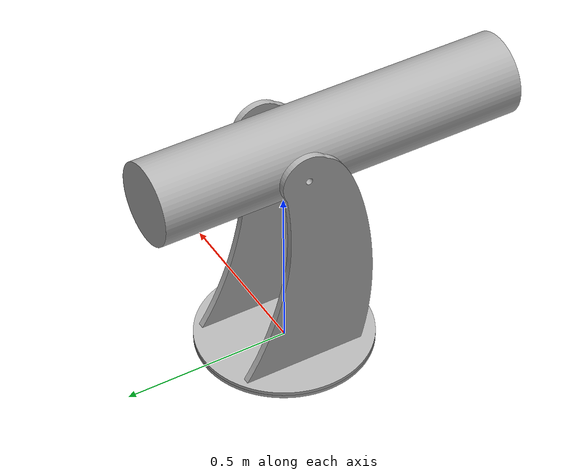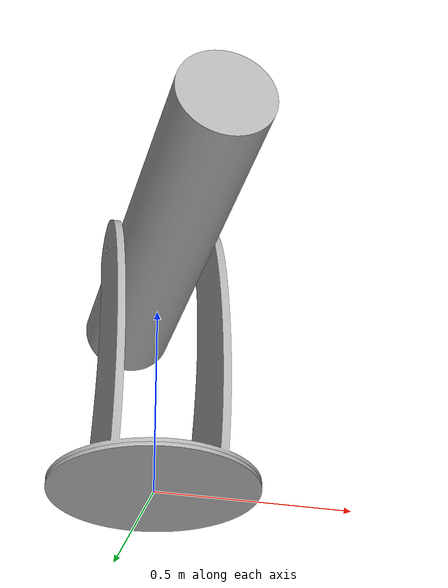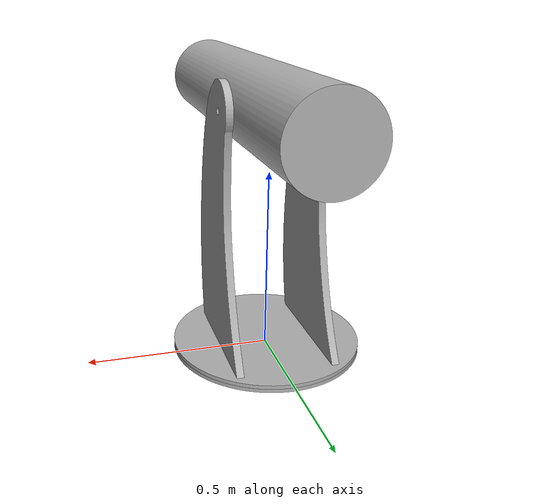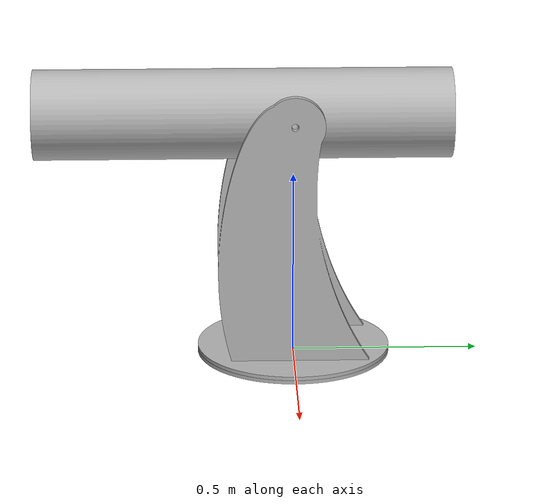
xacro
<?xml version="1.0" ?>
<robot name="model_teleskopu_skywatcher_8" xmlns:xacro="http://www.ros.org/wiki/xacro">

<xacro:include filename="$(find model_teleskopu_skywatcher_8_description)/urdf/materials.xacro" />
<xacro:include filename="$(find model_teleskopu_skywatcher_8_description)/urdf/model_teleskopu_skywatcher_8.trans" />
<xacro:include filename="$(find model_teleskopu_skywatcher_8_description)/urdf/model_teleskopu_skywatcher_8.gazebo" />
<link name="base_link">
  <inertial>
    <origin xyz="0.0 -3.4260491716698393e-17 0.005" rpy="0 0 0"/>
    <mass value="16.671175575539596"/>
    <inertia ixx="0.281882" iyy="0.281882" izz="0.563486" ixy="0.0" iyz="-0.0" ixz="-0.0"/>
  </inertial>
  <visual>
    <origin xyz="0 0 0" rpy="0 0 0"/>
    <geometry>
      <mesh filename="package://model_teleskopu_skywatcher_8_description/meshes/base_link.stl" scale="0.001 0.001 0.001"/>
    </geometry>
    <material name="silver"/>
  </visual>
  <collision>
    <origin xyz="0 0 0" rpy="0 0 0"/>
    <geometry>
      <mesh filename="package://model_teleskopu_skywatcher_8_description/meshes/base_link.stl" scale="0.001 0.001 0.001"/>
    </geometry>
  </collision>
</link>

<link name="link_2_1">
  <inertial>
    <origin xyz="0.11238822172500042 -0.13374572247818428 0.0464918849526732" rpy="0 0 0"/>
    <mass value="393.59793579966487"/>
    <inertia ixx="41.764352" iyy="7.56931" izz="37.262145" ixy="-2.006245" iyz="12.585569" ixz="0.735879"/>
  </inertial>
  <visual>
    <origin xyz="0.119795 -0.007004 -0.67" rpy="0 0 0"/>
    <geometry>
      <mesh filename="package://model_teleskopu_skywatcher_8_description/meshes/link_2_1.stl" scale="0.001 0.001 0.001"/>
    </geometry>
    <material name="silver"/>
  </visual>
  <collision>
    <origin xyz="0.119795 -0.007004 -0.67" rpy="0 0 0"/>
    <geometry>
      <mesh filename="package://model_teleskopu_skywatcher_8_description/meshes/link_2_1.stl" scale="0.001 0.001 0.001"/>
    </geometry>
  </collision>
</link>

<link name="link_1_1">
  <inertial>
    <origin xyz="-0.001871869681063423 -0.03201414969582831 0.2537225058105447" rpy="0 0 0"/>
    <mass value="76.07572361819237"/>
    <inertia ixx="4.480154" iyy="5.034105" izz="2.017568" ixy="0.032501" iyz="0.256152" ixz="0.014977"/>
  </inertial>
  <visual>
    <origin xyz="-0.0 -0.0 -0.01" rpy="0 0 0"/>
    <geometry>
      <mesh filename="package://model_teleskopu_skywatcher_8_description/meshes/link_1_1.stl" scale="0.001 0.001 0.001"/>
    </geometry>
    <material name="silver"/>
  </visual>
  <collision>
    <origin xyz="-0.0 -0.0 -0.01" rpy="0 0 0"/>
    <geometry>
      <mesh filename="package://model_teleskopu_skywatcher_8_description/meshes/link_1_1.stl" scale="0.001 0.001 0.001"/>
    </geometry>
  </collision>
</link>

<joint name="Revolute 2" type="revolute">
  <origin xyz="-0.119795 0.007004 0.66" rpy="0 0 0"/>
  <parent link="link_1_1"/>
  <child link="link_2_1"/>
  <axis xyz="-0.998295 0.05837 0.0"/>
  <limit upper="1.047198" lower="-0.523599" effort="100" velocity="100"/>
</joint>

<joint name="Revolute 3" type="continuous">
  <origin xyz="0.0 0.0 0.01" rpy="0 0 0"/>
  <parent link="base_link"/>
  <child link="link_1_1"/>
  <axis xyz="0.0 0.0 1.0"/>
</joint>

</robot>

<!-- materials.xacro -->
<robot name="model_teleskopu_skywatcher_8" xmlns:xacro="http://www.ros.org/wiki/xacro" >

<material name="silver">
  <color rgba="0.700 0.700 0.700 1.000"/>
</material>

</robot>

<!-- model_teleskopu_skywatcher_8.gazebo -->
<robot name="model_teleskopu_skywatcher_8" xmlns:xacro="http://www.ros.org/wiki/xacro" >

<xacro:property name="body_color" value="Gazebo/Silver" />

<gazebo>
  <plugin name="control" filename="libgazebo_ros_control.so"/>
</gazebo>
<gazebo reference="base_link">
  <material>${body_color}</material>
  <mu1>0.2</mu1>
  <mu2>0.2</mu2>
  <selfCollide>true</selfCollide>
  <gravity>true</gravity>
</gazebo>

<gazebo reference="link_2_1">
  <material>${body_color}</material>
  <mu1>0.2</mu1>
  <mu2>0.2</mu2>
  <selfCollide>true</selfCollide>
</gazebo>

<gazebo reference="link_1_1">
  <material>${body_color}</material>
  <mu1>0.2</mu1>
  <mu2>0.2</mu2>
  <selfCollide>true</selfCollide>
</gazebo>

</robot>
